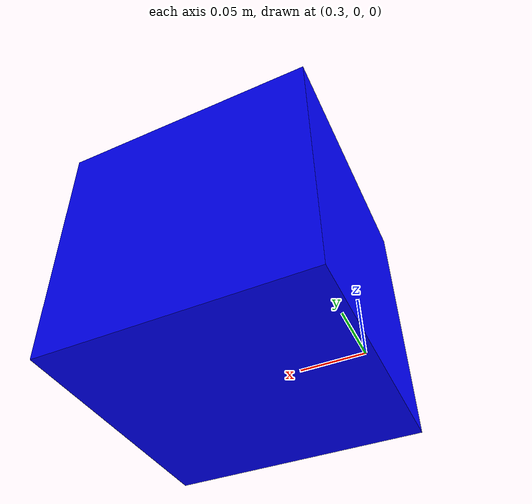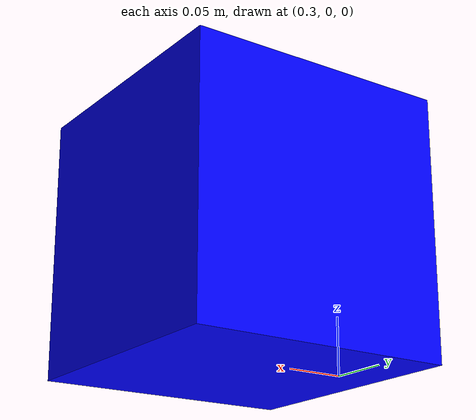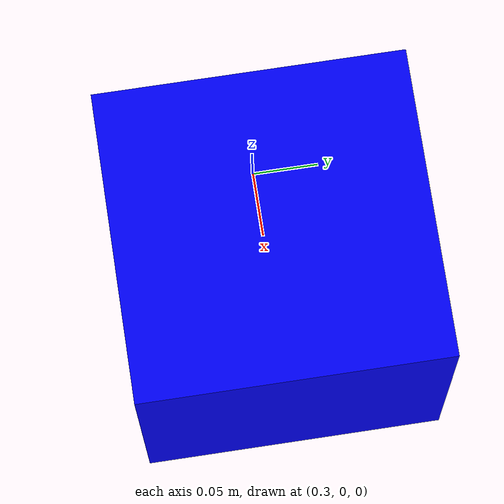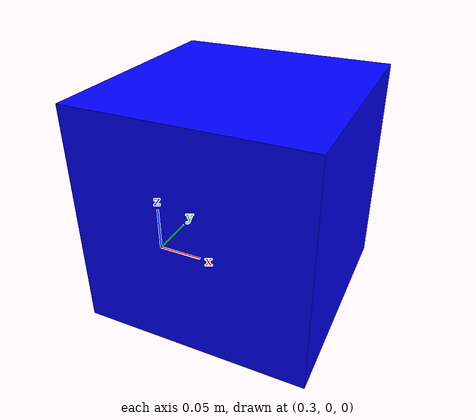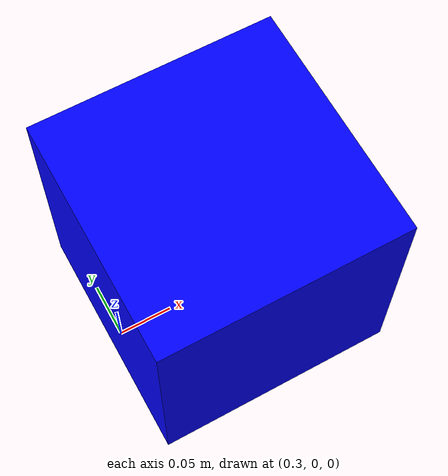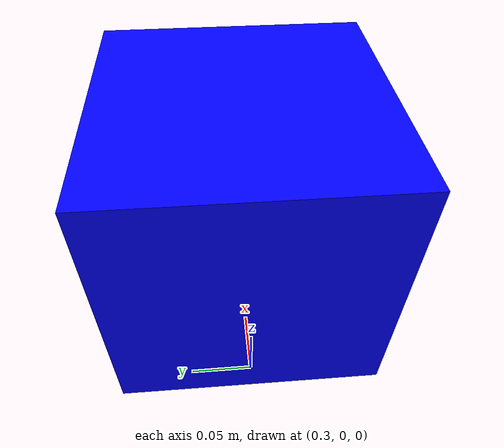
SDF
<?xml version="1.0" ?>
<sdf version="1.6">
  <model name="pickup_box_blue">
    <pose>0.4 0 0.1 0 0 0</pose>
    <static>false</static>
    <link name="box_link">
      <collision name="collision">
        <geometry>
          <box>
            <size>0.1 0.1 0.1</size>
          </box>
        </geometry>
        <surface>
          <friction>
            <ode>
              <mu>0.8</mu>
              <mu2>0.8</mu2>
            </ode>
          </friction>
        </surface>
      </collision>
      <visual name="visual">
        <geometry>
          <box>
            <size>0.22 0.22 0.22</size>
          </box>
        </geometry>
        <material>
          <ambient>0 0 1 1</ambient>     <!-- Blue ambient color -->
          <diffuse>0 0 1 1</diffuse>     <!-- Blue diffuse color -->
          <specular>0.1 0.1 0.1 1</specular>
        </material>
      </visual>
      <inertial>
        <mass>1.0</mass>
        <inertia>
          <ixx>0.0067</ixx>
          <iyy>0.0067</iyy>
          <izz>0.0067</izz>
        </inertia>
      </inertial>
    </link>
  </model>
</sdf>
